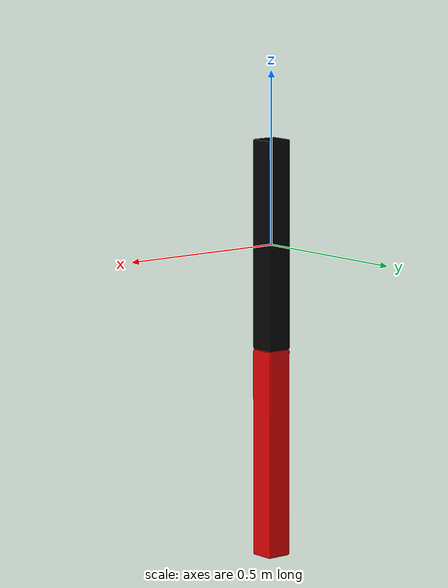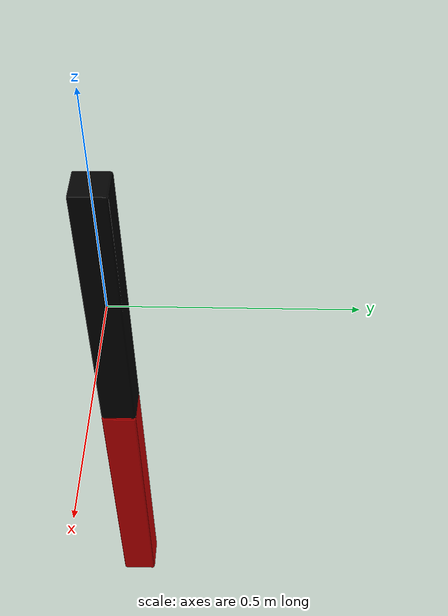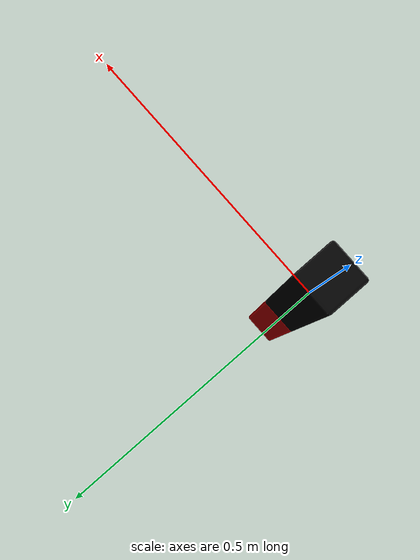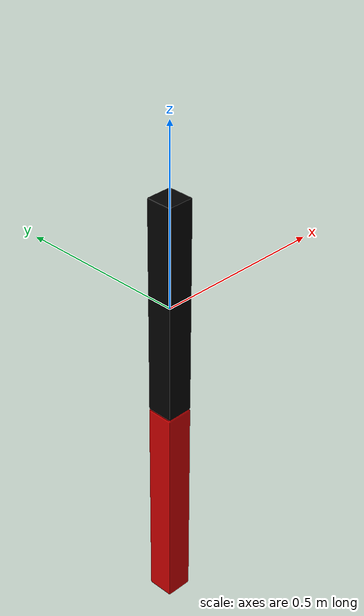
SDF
<?xml version="1.0"?>
<sdf version="1.6">
	<model name="robosub_gate_leg">
		<static>true</static>
    	<pose>0 0 0 0 0 0</pose>
		<link name="robosub_gate_leg">
			<pose>0 0 0 0 0 0</pose>
			<collision name="robosub_gate_leg_col">
				<pose>0 0 0 0 0 0</pose>
				<geometry>
					<mesh>
						<uri>model://robosub_gate_leg/meshes/gate_leg.dae</uri>
					</mesh>
				</geometry>
			</collision>
			<visual name="robosub_gate_leg_vis">
				<pose>0 0 0 0 0 0</pose>
				<geometry>
					<mesh>
						<uri>model://robosub_gate_leg/meshes/gate_leg.dae</uri>
					</mesh>
				</geometry>
			</visual>

		</link>
	</model>
</sdf>
